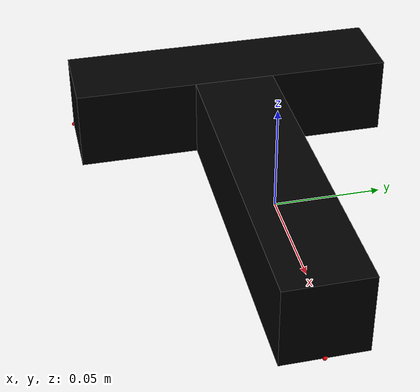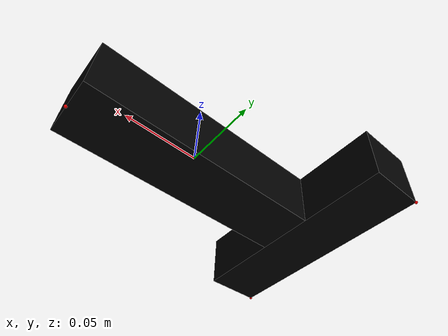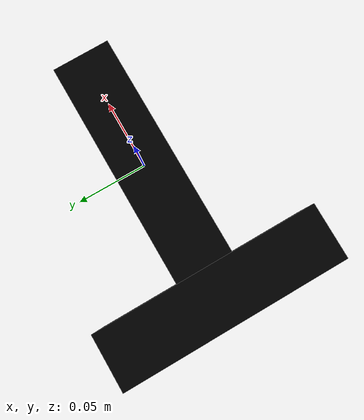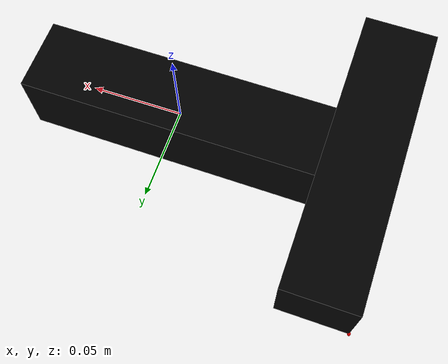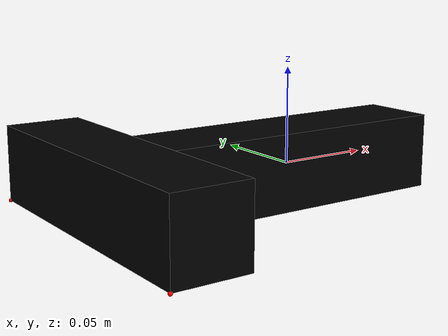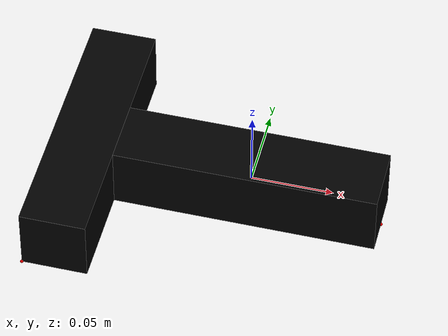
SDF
<?xml version="1.0"?>
<sdf version="1.7">
  <model name="t_shape">
    <link name="vertical_link">
      <inertial>
        <pose>0 0 0 0 0 0</pose>
        <mass>0.5</mass>
        <!-- Inertia values were calculated to be consistent with the mass and
             geometry size, assuming a uniform density. -->
        <inertia>
            <ixx>0.0001333</ixx>
            <iyy>0.0011333 </iyy>
            <izz>0.0011333 </izz>
            <ixy>0.0</ixy>
            <ixz>0.0</ixz>
            <iyz>0.0</iyz>
        </inertia>
      </inertial>

      <visual name="vertical_link">
        <pose>0 0 0 0 0 0</pose>
        <geometry>
          <box>
            <size>0.16 0.04 0.04</size>
          </box>
        </geometry>
        <material>
          <diffuse>0 0 0 1</diffuse>
        </material>
      </visual>

      <collision name="vertical_link_volume">
        <pose>0 0 0 0 0 0</pose>
            <geometry>
          <box>
            <size>0.16 0.04 0.04</size>
          </box>
        </geometry>
        <drake:proximity_properties>
          <drake:compliant_hydroelastic/>
          <drake:hydroelastic_modulus> 3.0e7 </drake:hydroelastic_modulus>
          <drake:mesh_resolution_hint> 0.18 </drake:mesh_resolution_hint>
          <drake:hunt_crossley_dissipation>10</drake:hunt_crossley_dissipation>
          <drake:mu_dynamic>0.3</drake:mu_dynamic>
        </drake:proximity_properties>
      </collision>
    </link>

    <link name="horizontal_link">
      <inertial>
        <pose>-0.10 0 0 0 0 1.5708</pose>
        <mass>0.5</mass>
        <!-- Inertia values were calculated to be consistent with the mass and
             geometry size, assuming a uniform density. -->
        <inertia>
            <ixx>0.0001333</ixx>
            <iyy>0.0011333 </iyy>
            <izz>0.0011333 </izz>
            <ixy>0.0</ixy>
            <ixz>0.0</ixz>
            <iyz>0.0</iyz>
        </inertia>
      </inertial>

      <visual name="horizontal_link">
        <pose>-0.10 0 0 0 0 1.5708</pose>
        <geometry>
          <box>
            <size>0.16 0.04 0.04</size>
          </box>
        </geometry>
        <material>
          <diffuse>0 0 0 1</diffuse>
        </material>
      </visual>
      <collision name="horizontal_link_volume">
        <pose>-0.10 0 0 0 0 1.5708</pose>
            <geometry>
          <box>
            <size>0.16 0.04 0.04</size>
          </box>
        </geometry>
        <drake:proximity_properties>
          <drake:compliant_hydroelastic/>
          <drake:hydroelastic_modulus> 3.0e7 </drake:hydroelastic_modulus>
          <drake:mesh_resolution_hint> 0.18 </drake:mesh_resolution_hint>
          <drake:hunt_crossley_dissipation>10</drake:hunt_crossley_dissipation>
          <drake:mu_dynamic>0.3</drake:mu_dynamic>
        </drake:proximity_properties>
      </collision>
    </link>

    <link name="corner_nxynz">
      <inertial>
        <pose>0 0 0 0 0 0</pose>
        <mass>0</mass>
        <inertia>
          <ixx>0.</ixx>
          <ixy>0</ixy>
          <ixz>0</ixz>
          <iyy>0.</iyy>
          <iyz>0</iyz>
          <izz>0.</izz>
        </inertia>
      </inertial>
    <collision name="corner_nxynz_">
        <geometry>
          <sphere>
            <radius>0.001</radius>
          </sphere>
        </geometry>
        <drake:proximity_properties>
        <drake:mu_dynamic>0.3</drake:mu_dynamic>
        </drake:proximity_properties>
        <pose> -0.12 0.08 -0.02 0 0 0</pose>
      </collision>
    <visual name="corner_nxynz">
        <geometry>
          <sphere>
            <radius>0.001</radius>
          </sphere>
        </geometry>
        <material>
        <diffuse>1 0 0 1</diffuse>
        </material>
        <pose> -0.12 0.08 -0.02 0 0 0</pose>
      </visual>
    </link>

    <link name="corner_nxnynz">
      <inertial>
        <pose>0 0 0 0 0 0</pose>
        <mass>0</mass>
        <inertia>
          <ixx>0.</ixx>
          <ixy>0</ixy>
          <ixz>0</ixz>
          <iyy>0.</iyy>
          <iyz>0</iyz>
          <izz>0.</izz>
        </inertia>
      </inertial>
    <collision name="corner_nxnynz">
        <geometry>
          <sphere>
            <radius>0.001</radius>
          </sphere>
        </geometry>
        <drake:proximity_properties>
        <drake:mu_dynamic>0.3</drake:mu_dynamic>
        </drake:proximity_properties>
        <pose> -0.12 -0.08 -0.02 0 0 0</pose>
      </collision>
    <visual name="corner_nxnynz">
        <geometry>
          <sphere>
            <radius>0.001</radius>
          </sphere>
        </geometry>
        <material>
        <diffuse>1 0 0 1</diffuse>
        </material>
        <pose> -0.12 -0.08 -0.02 0 0 0</pose>
      </visual>
    </link>

    <link name="corner_xynz">
      <inertial>
        <pose>0 0 0 0 0 0</pose>
        <mass>0</mass>
        <inertia>
          <ixx>0.</ixx>
          <ixy>0</ixy>
          <ixz>0</ixz>
          <iyy>0.</iyy>
          <iyz>0</iyz>
          <izz>0.</izz>
        </inertia>
      </inertial>
    <collision name="corner_xynz">
        <geometry>
          <sphere>
            <radius>0.001</radius>
          </sphere>
        </geometry>
        <drake:proximity_properties>
        <drake:mu_dynamic>0.3</drake:mu_dynamic>
        </drake:proximity_properties>
        <pose> 0.08 0.0 -0.02 0 0 0</pose>
      </collision>
    <visual name="corner_xynz">
        <geometry>
          <sphere>
            <radius>0.001</radius>
          </sphere>
        </geometry>
        <material>
        <diffuse>1 0 0 1</diffuse>
        </material>
        <pose> 0.08 0.0 -0.02 0 0 0</pose>
      </visual>
    </link>

    <joint name="fixed_joint" type="fixed">
      <!-- Parent and child links for the joint -->
      <parent>vertical_link</parent>
      <child>horizontal_link</child>
      <!-- Pose of the joint relative to the parent link -->
      <pose>0 0 0 0 0 0</pose>
    </joint>

    <joint name="corner_nxynz_joint" type="fixed">
      <!-- Parent and child links for the joint -->
      <parent>horizontal_link</parent>
      <child>corner_nxynz</child>
      <!-- Pose of the joint relative to the parent link -->
      <pose>0 0 0 0 0 0</pose>
    </joint>

    <joint name="corner_nxnynz_joint" type="fixed">
      <!-- Parent and child links for the joint -->
      <parent>horizontal_link</parent>
      <child>corner_nxnynz</child>
      <!-- Pose of the joint relative to the parent link -->
      <pose>0 0 0 0 0 0</pose>
    </joint>

    <joint name="corner_xynz_joint" type="fixed">
      <!-- Parent and child links for the joint -->
      <parent>vertical_link</parent>
      <child>corner_xynz</child>
      <!-- Pose of the joint relative to the parent link -->
      <pose>0 0 0 0 0 0</pose>
    </joint>

  </model>
</sdf>
